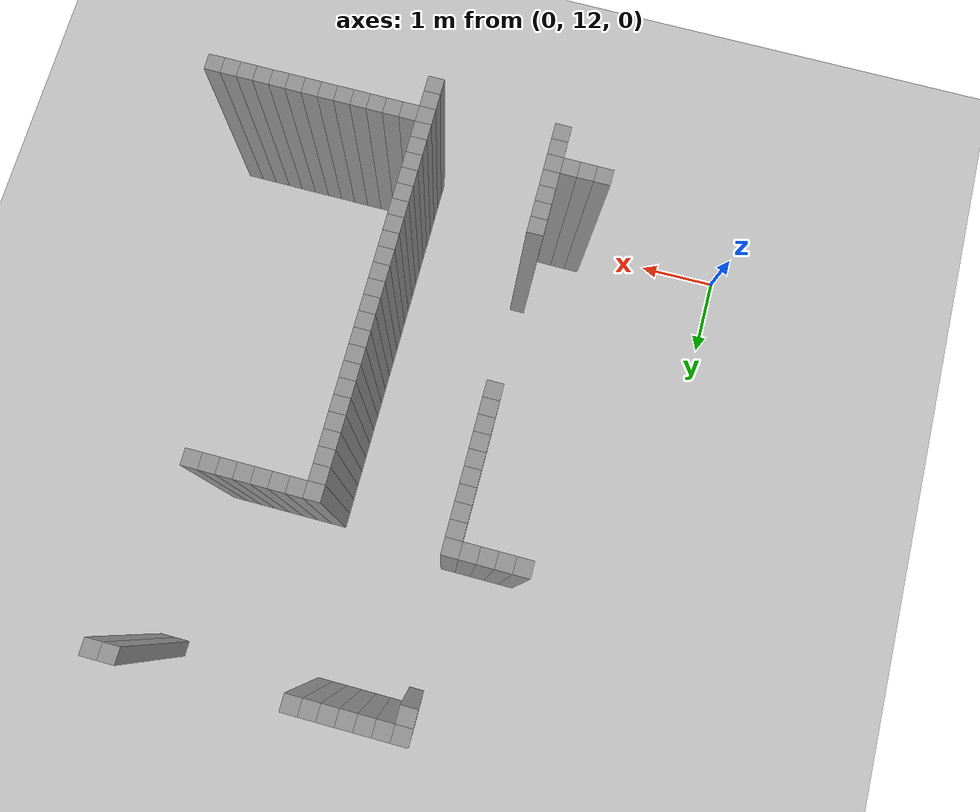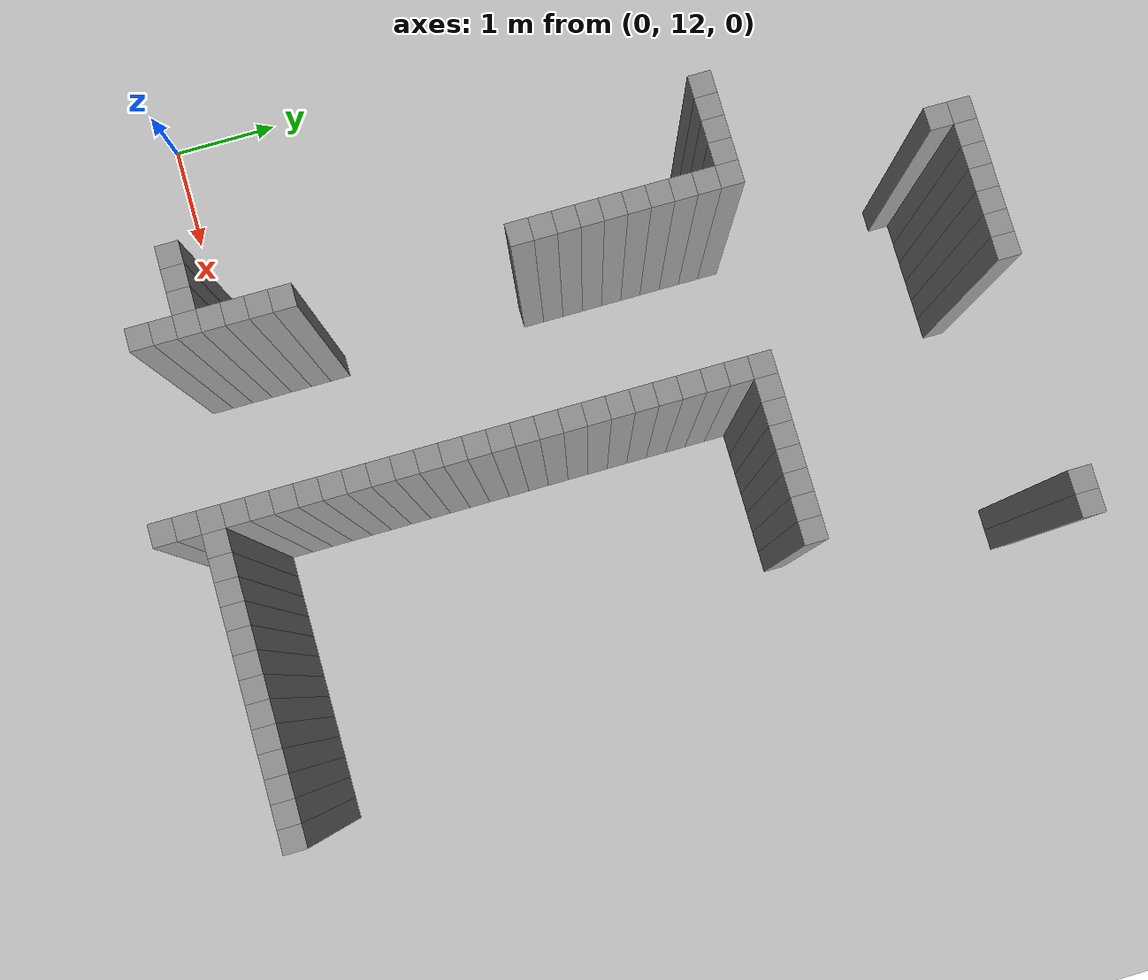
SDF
<sdf version="1.7">
 <world name="default">
  <model name="ground_plane">
   <static>1</static>
   <link name="link">
    <collision name="collision">
     <geometry><plane><normal>0 0 1</normal><size>100 100</size></plane></geometry>
     <surface>
      <contact><collide_bitmask>65535</collide_bitmask></contact>
      <friction><ode><mu>100</mu><mu2>50</mu2></ode></friction>
     </surface>
    </collision>
    <visual name="visual">
     <cast_shadows>0</cast_shadows>
     <geometry><plane><normal>0 0 1</normal><size>100 100</size></plane></geometry>
     <material>
      <script><uri>file://media/materials/scripts/gazebo.material</uri><name>Gazebo/Grey</name></script>
     </material>
    </visual>
   </link>
  </model>
  <model name="05222">
   <pose>-1 -1 0 0 -0 0</pose>
   <link name="Wall_581">
    <collision name="Wall_581_Collision">
     <geometry><box><size>0.2 0.2 3</size></box></geometry>
     <pose>0 0 1.5 0 -0 0</pose>
    </collision>
    <visual name="Wall_581_Visual">
     <pose>0 0 1.5 0 -0 0</pose>
     <geometry><box><size>0.2 0.2 3</size></box></geometry>
     <material>
      <script><uri>file://media/materials/scripts/gazebo.material</uri><name>Gazebo/Grey</name></script>
      <ambient>1 1 1 1</ambient>
     </material>
     <meta><layer>0</layer></meta>
    </visual>
    <pose>5.2 12.600000000000001 0 0 -0 0</pose>
   </link>
   <link name="Wall_586">
    <collision name="Wall_586_Collision">
     <geometry><box><size>0.2 0.2 3</size></box></geometry>
     <pose>0 0 1.5 0 -0 0</pose>
    </collision>
    <visual name="Wall_586_Visual">
     <pose>0 0 1.5 0 -0 0</pose>
     <geometry><box><size>0.2 0.2 3</size></box></geometry>
     <material>
      <script><uri>file://media/materials/scripts/gazebo.material</uri><name>Gazebo/Grey</name></script>
      <ambient>1 1 1 1</ambient>
     </material>
     <meta><layer>0</layer></meta>
    </visual>
    <pose>3.6 12.8 0 0 -0 0</pose>
   </link>
   <link name="Wall_587">
    <collision name="Wall_587_Collision">
     <geometry><box><size>0.2 0.2 3</size></box></geometry>
     <pose>0 0 1.5 0 -0 0</pose>
    </collision>
    <visual name="Wall_587_Visual">
     <pose>0 0 1.5 0 -0 0</pose>
     <geometry><box><size>0.2 0.2 3</size></box></geometry>
     <material>
      <script><uri>file://media/materials/scripts/gazebo.material</uri><name>Gazebo/Grey</name></script>
      <ambient>1 1 1 1</ambient>
     </material>
     <meta><layer>0</layer></meta>
    </visual>
    <pose>5.2 12.8 0 0 -0 0</pose>
   </link>
   <link name="Wall_592">
    <collision name="Wall_592_Collision">
     <geometry><box><size>0.2 0.2 3</size></box></geometry>
     <pose>0 0 1.5 0 -0 0</pose>
    </collision>
    <visual name="Wall_592_Visual">
     <pose>0 0 1.5 0 -0 0</pose>
     <geometry><box><size>0.2 0.2 3</size></box></geometry>
     <material>
      <script><uri>file://media/materials/scripts/gazebo.material</uri><name>Gazebo/Grey</name></script>
      <ambient>1 1 1 1</ambient>
     </material>
     <meta><layer>0</layer></meta>
    </visual>
    <pose>3.6 13.0 0 0 -0 0</pose>
   </link>
   <link name="Wall_593">
    <collision name="Wall_593_Collision">
     <geometry><box><size>0.2 0.2 3</size></box></geometry>
     <pose>0 0 1.5 0 -0 0</pose>
    </collision>
    <visual name="Wall_593_Visual">
     <pose>0 0 1.5 0 -0 0</pose>
     <geometry><box><size>0.2 0.2 3</size></box></geometry>
     <material>
      <script><uri>file://media/materials/scripts/gazebo.material</uri><name>Gazebo/Grey</name></script>
      <ambient>1 1 1 1</ambient>
     </material>
     <meta><layer>0</layer></meta>
    </visual>
    <pose>5.2 13.0 0 0 -0 0</pose>
   </link>
   <link name="Wall_594">
    <collision name="Wall_594_Collision">
     <geometry><box><size>0.2 0.2 3</size></box></geometry>
     <pose>0 0 1.5 0 -0 0</pose>
    </collision>
    <visual name="Wall_594_Visual">
     <pose>0 0 1.5 0 -0 0</pose>
     <geometry><box><size>0.2 0.2 3</size></box></geometry>
     <material>
      <script><uri>file://media/materials/scripts/gazebo.material</uri><name>Gazebo/Grey</name></script>
      <ambient>1 1 1 1</ambient>
     </material>
     <meta><layer>0</layer></meta>
    </visual>
    <pose>5.4 13.0 0 0 -0 0</pose>
   </link>
   <link name="Wall_595">
    <collision name="Wall_595_Collision">
     <geometry><box><size>0.2 0.2 3</size></box></geometry>
     <pose>0 0 1.5 0 -0 0</pose>
    </collision>
    <visual name="Wall_595_Visual">
     <pose>0 0 1.5 0 -0 0</pose>
     <geometry><box><size>0.2 0.2 3</size></box></geometry>
     <material>
      <script><uri>file://media/materials/scripts/gazebo.material</uri><name>Gazebo/Grey</name></script>
      <ambient>1 1 1 1</ambient>
     </material>
     <meta><layer>0</layer></meta>
    </visual>
    <pose>5.6000000000000005 13.0 0 0 -0 0</pose>
   </link>
   <link name="Wall_596">
    <collision name="Wall_596_Collision">
     <geometry><box><size>0.2 0.2 3</size></box></geometry>
     <pose>0 0 1.5 0 -0 0</pose>
    </collision>
    <visual name="Wall_596_Visual">
     <pose>0 0 1.5 0 -0 0</pose>
     <geometry><box><size>0.2 0.2 3</size></box></geometry>
     <material>
      <script><uri>file://media/materials/scripts/gazebo.material</uri><name>Gazebo/Grey</name></script>
      <ambient>1 1 1 1</ambient>
     </material>
     <meta><layer>0</layer></meta>
    </visual>
    <pose>5.800000000000001 13.0 0 0 -0 0</pose>
   </link>
   <link name="Wall_597">
    <collision name="Wall_597_Collision">
     <geometry><box><size>0.2 0.2 3</size></box></geometry>
     <pose>0 0 1.5 0 -0 0</pose>
    </collision>
    <visual name="Wall_597_Visual">
     <pose>0 0 1.5 0 -0 0</pose>
     <geometry><box><size>0.2 0.2 3</size></box></geometry>
     <material>
      <script><uri>file://media/materials/scripts/gazebo.material</uri><name>Gazebo/Grey</name></script>
      <ambient>1 1 1 1</ambient>
     </material>
     <meta><layer>0</layer></meta>
    </visual>
    <pose>6.0 13.0 0 0 -0 0</pose>
   </link>
   <link name="Wall_598">
    <collision name="Wall_598_Collision">
     <geometry><box><size>0.2 0.2 3</size></box></geometry>
     <pose>0 0 1.5 0 -0 0</pose>
    </collision>
    <visual name="Wall_598_Visual">
     <pose>0 0 1.5 0 -0 0</pose>
     <geometry><box><size>0.2 0.2 3</size></box></geometry>
     <material>
      <script><uri>file://media/materials/scripts/gazebo.material</uri><name>Gazebo/Grey</name></script>
      <ambient>1 1 1 1</ambient>
     </material>
     <meta><layer>0</layer></meta>
    </visual>
    <pose>6.2 13.0 0 0 -0 0</pose>
   </link>
   <link name="Wall_599">
    <collision name="Wall_599_Collision">
     <geometry><box><size>0.2 0.2 3</size></box></geometry>
     <pose>0 0 1.5 0 -0 0</pose>
    </collision>
    <visual name="Wall_599_Visual">
     <pose>0 0 1.5 0 -0 0</pose>
     <geometry><box><size>0.2 0.2 3</size></box></geometry>
     <material>
      <script><uri>file://media/materials/scripts/gazebo.material</uri><name>Gazebo/Grey</name></script>
      <ambient>1 1 1 1</ambient>
     </material>
     <meta><layer>0</layer></meta>
    </visual>
    <pose>6.4 13.0 0 0 -0 0</pose>
   </link>
   <link name="Wall_600">
    <collision name="Wall_600_Collision">
     <geometry><box><size>0.2 0.2 3</size></box></geometry>
     <pose>0 0 1.5 0 -0 0</pose>
    </collision>
    <visual name="Wall_600_Visual">
     <pose>0 0 1.5 0 -0 0</pose>
     <geometry><box><size>0.2 0.2 3</size></box></geometry>
     <material>
      <script><uri>file://media/materials/scripts/gazebo.material</uri><name>Gazebo/Grey</name></script>
      <ambient>1 1 1 1</ambient>
     </material>
     <meta><layer>0</layer></meta>
    </visual>
    <pose>6.6000000000000005 13.0 0 0 -0 0</pose>
   </link>
   <link name="Wall_601">
    <collision name="Wall_601_Collision">
     <geometry><box><size>0.2 0.2 3</size></box></geometry>
     <pose>0 0 1.5 0 -0 0</pose>
    </collision>
    <visual name="Wall_601_Visual">
     <pose>0 0 1.5 0 -0 0</pose>
     <geometry><box><size>0.2 0.2 3</size></box></geometry>
     <material>
      <script><uri>file://media/materials/scripts/gazebo.material</uri><name>Gazebo/Grey</name></script>
      <ambient>1 1 1 1</ambient>
     </material>
     <meta><layer>0</layer></meta>
    </visual>
    <pose>6.800000000000001 13.0 0 0 -0 0</pose>
   </link>
   <link name="Wall_602">
    <collision name="Wall_602_Collision">
     <geometry><box><size>0.2 0.2 3</size></box></geometry>
     <pose>0 0 1.5 0 -0 0</pose>
    </collision>
    <visual name="Wall_602_Visual">
     <pose>0 0 1.5 0 -0 0</pose>
     <geometry><box><size>0.2 0.2 3</size></box></geometry>
     <material>
      <script><uri>file://media/materials/scripts/gazebo.material</uri><name>Gazebo/Grey</name></script>
      <ambient>1 1 1 1</ambient>
     </material>
     <meta><layer>0</layer></meta>
    </visual>
    <pose>7.0 13.0 0 0 -0 0</pose>
   </link>
   <link name="Wall_603">
    <collision name="Wall_603_Collision">
     <geometry><box><size>0.2 0.2 3</size></box></geometry>
     <pose>0 0 1.5 0 -0 0</pose>
    </collision>
    <visual name="Wall_603_Visual">
     <pose>0 0 1.5 0 -0 0</pose>
     <geometry><box><size>0.2 0.2 3</size></box></geometry>
     <material>
      <script><uri>file://media/materials/scripts/gazebo.material</uri><name>Gazebo/Grey</name></script>
      <ambient>1 1 1 1</ambient>
     </material>
     <meta><layer>0</layer></meta>
    </visual>
    <pose>7.2 13.0 0 0 -0 0</pose>
   </link>
   <link name="Wall_604">
    <collision name="Wall_604_Collision">
     <geometry><box><size>0.2 0.2 3</size></box></geometry>
     <pose>0 0 1.5 0 -0 0</pose>
    </collision>
    <visual name="Wall_604_Visual">
     <pose>0 0 1.5 0 -0 0</pose>
     <geometry><box><size>0.2 0.2 3</size></box></geometry>
     <material>
      <script><uri>file://media/materials/scripts/gazebo.material</uri><name>Gazebo/Grey</name></script>
      <ambient>1 1 1 1</ambient>
     </material>
     <meta><layer>0</layer></meta>
    </visual>
    <pose>7.4 13.0 0 0 -0 0</pose>
   </link>
   <link name="Wall_605">
    <collision name="Wall_605_Collision">
     <geometry><box><size>0.2 0.2 3</size></box></geometry>
     <pose>0 0 1.5 0 -0 0</pose>
    </collision>
    <visual name="Wall_605_Visual">
     <pose>0 0 1.5 0 -0 0</pose>
     <geometry><box><size>0.2 0.2 3</size></box></geometry>
     <material>
      <script><uri>file://media/materials/scripts/gazebo.material</uri><name>Gazebo/Grey</name></script>
      <ambient>1 1 1 1</ambient>
     </material>
     <meta><layer>0</layer></meta>
    </visual>
    <pose>7.6000000000000005 13.0 0 0 -0 0</pose>
   </link>
   <link name="Wall_606">
    <collision name="Wall_606_Collision">
     <geometry><box><size>0.2 0.2 3</size></box></geometry>
     <pose>0 0 1.5 0 -0 0</pose>
    </collision>
    <visual name="Wall_606_Visual">
     <pose>0 0 1.5 0 -0 0</pose>
     <geometry><box><size>0.2 0.2 3</size></box></geometry>
     <material>
      <script><uri>file://media/materials/scripts/gazebo.material</uri><name>Gazebo/Grey</name></script>
      <ambient>1 1 1 1</ambient>
     </material>
     <meta><layer>0</layer></meta>
    </visual>
    <pose>7.800000000000001 13.0 0 0 -0 0</pose>
   </link>
   <link name="Wall_649">
    <collision name="Wall_649_Collision">
     <geometry><box><size>0.2 0.2 3</size></box></geometry>
     <pose>0 0 1.5 0 -0 0</pose>
    </collision>
    <visual name="Wall_649_Visual">
     <pose>0 0 1.5 0 -0 0</pose>
     <geometry><box><size>0.2 0.2 3</size></box></geometry>
     <material>
      <script><uri>file://media/materials/scripts/gazebo.material</uri><name>Gazebo/Grey</name></script>
      <ambient>1 1 1 1</ambient>
     </material>
     <meta><layer>0</layer></meta>
    </visual>
    <pose>3.0 13.200000000000001 0 0 -0 0</pose>
   </link>
   <link name="Wall_650">
    <collision name="Wall_650_Collision">
     <geometry><box><size>0.2 0.2 3</size></box></geometry>
     <pose>0 0 1.5 0 -0 0</pose>
    </collision>
    <visual name="Wall_650_Visual">
     <pose>0 0 1.5 0 -0 0</pose>
     <geometry><box><size>0.2 0.2 3</size></box></geometry>
     <material>
      <script><uri>file://media/materials/scripts/gazebo.material</uri><name>Gazebo/Grey</name></script>
      <ambient>1 1 1 1</ambient>
     </material>
     <meta><layer>0</layer></meta>
    </visual>
    <pose>3.2 13.200000000000001 0 0 -0 0</pose>
   </link>
   <link name="Wall_651">
    <collision name="Wall_651_Collision">
     <geometry><box><size>0.2 0.2 3</size></box></geometry>
     <pose>0 0 1.5 0 -0 0</pose>
    </collision>
    <visual name="Wall_651_Visual">
     <pose>0 0 1.5 0 -0 0</pose>
     <geometry><box><size>0.2 0.2 3</size></box></geometry>
     <material>
      <script><uri>file://media/materials/scripts/gazebo.material</uri><name>Gazebo/Grey</name></script>
      <ambient>1 1 1 1</ambient>
     </material>
     <meta><layer>0</layer></meta>
    </visual>
    <pose>3.4000000000000004 13.200000000000001 0 0 -0 0</pose>
   </link>
   <link name="Wall_652">
    <collision name="Wall_652_Collision">
     <geometry><box><size>0.2 0.2 3</size></box></geometry>
     <pose>0 0 1.5 0 -0 0</pose>
    </collision>
    <visual name="Wall_652_Visual">
     <pose>0 0 1.5 0 -0 0</pose>
     <geometry><box><size>0.2 0.2 3</size></box></geometry>
     <material>
      <script><uri>file://media/materials/scripts/gazebo.material</uri><name>Gazebo/Grey</name></script>
      <ambient>1 1 1 1</ambient>
     </material>
     <meta><layer>0</layer></meta>
    </visual>
    <pose>3.6 13.200000000000001 0 0 -0 0</pose>
   </link>
   <link name="Wall_653">
    <collision name="Wall_653_Collision">
     <geometry><box><size>0.2 0.2 3</size></box></geometry>
     <pose>0 0 1.5 0 -0 0</pose>
    </collision>
    <visual name="Wall_653_Visual">
     <pose>0 0 1.5 0 -0 0</pose>
     <geometry><box><size>0.2 0.2 3</size></box></geometry>
     <material>
      <script><uri>file://media/materials/scripts/gazebo.material</uri><name>Gazebo/Grey</name></script>
      <ambient>1 1 1 1</ambient>
     </material>
     <meta><layer>0</layer></meta>
    </visual>
    <pose>5.2 13.200000000000001 0 0 -0 0</pose>
   </link>
   <link name="Wall_660">
    <collision name="Wall_660_Collision">
     <geometry><box><size>0.2 0.2 3</size></box></geometry>
     <pose>0 0 1.5 0 -0 0</pose>
    </collision>
    <visual name="Wall_660_Visual">
     <pose>0 0 1.5 0 -0 0</pose>
     <geometry><box><size>0.2 0.2 3</size></box></geometry>
     <material>
      <script><uri>file://media/materials/scripts/gazebo.material</uri><name>Gazebo/Grey</name></script>
      <ambient>1 1 1 1</ambient>
     </material>
     <meta><layer>0</layer></meta>
    </visual>
    <pose>3.6 13.4 0 0 -0 0</pose>
   </link>
   <link name="Wall_661">
    <collision name="Wall_661_Collision">
     <geometry><box><size>0.2 0.2 3</size></box></geometry>
     <pose>0 0 1.5 0 -0 0</pose>
    </collision>
    <visual name="Wall_661_Visual">
     <pose>0 0 1.5 0 -0 0</pose>
     <geometry><box><size>0.2 0.2 3</size></box></geometry>
     <material>
      <script><uri>file://media/materials/scripts/gazebo.material</uri><name>Gazebo/Grey</name></script>
      <ambient>1 1 1 1</ambient>
     </material>
     <meta><layer>0</layer></meta>
    </visual>
    <pose>5.2 13.4 0 0 -0 0</pose>
   </link>
   <link name="Wall_668">
    <collision name="Wall_668_Collision">
     <geometry><box><size>0.2 0.2 3</size></box></geometry>
     <pose>0 0 1.5 0 -0 0</pose>
    </collision>
    <visual name="Wall_668_Visual">
     <pose>0 0 1.5 0 -0 0</pose>
     <geometry><box><size>0.2 0.2 3</size></box></geometry>
     <material>
      <script><uri>file://media/materials/scripts/gazebo.material</uri><name>Gazebo/Grey</name></script>
      <ambient>1 1 1 1</ambient>
     </material>
     <meta><layer>0</layer></meta>
    </visual>
    <pose>3.6 13.600000000000001 0 0 -0 0</pose>
   </link>
   <link name="Wall_669">
    <collision name="Wall_669_Collision">
     <geometry><box><size>0.2 0.2 3</size></box></geometry>
     <pose>0 0 1.5 0 -0 0</pose>
    </collision>
    <visual name="Wall_669_Visual">
     <pose>0 0 1.5 0 -0 0</pose>
     <geometry><box><size>0.2 0.2 3</size></box></geometry>
     <material>
      <script><uri>file://media/materials/scripts/gazebo.material</uri><name>Gazebo/Grey</name></script>
      <ambient>1 1 1 1</ambient>
     </material>
     <meta><layer>0</layer></meta>
    </visual>
    <pose>5.2 13.600000000000001 0 0 -0 0</pose>
   </link>
   <link name="Wall_676">
    <collision name="Wall_676_Collision">
     <geometry><box><size>0.2 0.2 3</size></box></geometry>
     <pose>0 0 1.5 0 -0 0</pose>
    </collision>
    <visual name="Wall_676_Visual">
     <pose>0 0 1.5 0 -0 0</pose>
     <geometry><box><size>0.2 0.2 3</size></box></geometry>
     <material>
      <script><uri>file://media/materials/scripts/gazebo.material</uri><name>Gazebo/Grey</name></script>
      <ambient>1 1 1 1</ambient>
     </material>
     <meta><layer>0</layer></meta>
    </visual>
    <pose>3.6 13.8 0 0 -0 0</pose>
   </link>
   <link name="Wall_677">
    <collision name="Wall_677_Collision">
     <geometry><box><size>0.2 0.2 3</size></box></geometry>
     <pose>0 0 1.5 0 -0 0</pose>
    </collision>
    <visual name="Wall_677_Visual">
     <pose>0 0 1.5 0 -0 0</pose>
     <geometry><box><size>0.2 0.2 3</size></box></geometry>
     <material>
      <script><uri>file://media/materials/scripts/gazebo.material</uri><name>Gazebo/Grey</name></script>
      <ambient>1 1 1 1</ambient>
     </material>
     <meta><layer>0</layer></meta>
    </visual>
    <pose>5.2 13.8 0 0 -0 0</pose>
   </link>
   <link name="Wall_683">
    <collision name="Wall_683_Collision">
     <geometry><box><size>0.2 0.2 3</size></box></geometry>
     <pose>0 0 1.5 0 -0 0</pose>
    </collision>
    <visual name="Wall_683_Visual">
     <pose>0 0 1.5 0 -0 0</pose>
     <geometry><box><size>0.2 0.2 3</size></box></geometry>
     <material>
      <script><uri>file://media/materials/scripts/gazebo.material</uri><name>Gazebo/Grey</name></script>
      <ambient>1 1 1 1</ambient>
     </material>
     <meta><layer>0</layer></meta>
    </visual>
    <pose>3.6 14.0 0 0 -0 0</pose>
   </link>
   <link name="Wall_684">
    <collision name="Wall_684_Collision">
     <geometry><box><size>0.2 0.2 3</size></box></geometry>
     <pose>0 0 1.5 0 -0 0</pose>
    </collision>
    <visual name="Wall_684_Visual">
     <pose>0 0 1.5 0 -0 0</pose>
     <geometry><box><size>0.2 0.2 3</size></box></geometry>
     <material>
      <script><uri>file://media/materials/scripts/gazebo.material</uri><name>Gazebo/Grey</name></script>
      <ambient>1 1 1 1</ambient>
     </material>
     <meta><layer>0</layer></meta>
    </visual>
    <pose>5.2 14.0 0 0 -0 0</pose>
   </link>
   <link name="Wall_690">
    <collision name="Wall_690_Collision">
     <geometry><box><size>0.2 0.2 3</size></box></geometry>
     <pose>0 0 1.5 0 -0 0</pose>
    </collision>
    <visual name="Wall_690_Visual">
     <pose>0 0 1.5 0 -0 0</pose>
     <geometry><box><size>0.2 0.2 3</size></box></geometry>
     <material>
      <script><uri>file://media/materials/scripts/gazebo.material</uri><name>Gazebo/Grey</name></script>
      <ambient>1 1 1 1</ambient>
     </material>
     <meta><layer>0</layer></meta>
    </visual>
    <pose>5.2 14.200000000000001 0 0 -0 0</pose>
   </link>
   <link name="Wall_696">
    <collision name="Wall_696_Collision">
     <geometry><box><size>0.2 0.2 3</size></box></geometry>
     <pose>0 0 1.5 0 -0 0</pose>
    </collision>
    <visual name="Wall_696_Visual">
     <pose>0 0 1.5 0 -0 0</pose>
     <geometry><box><size>0.2 0.2 3</size></box></geometry>
     <material>
      <script><uri>file://media/materials/scripts/gazebo.material</uri><name>Gazebo/Grey</name></script>
      <ambient>1 1 1 1</ambient>
     </material>
     <meta><layer>0</layer></meta>
    </visual>
    <pose>5.2 14.4 0 0 -0 0</pose>
   </link>
   <link name="Wall_702">
    <collision name="Wall_702_Collision">
     <geometry><box><size>0.2 0.2 3</size></box></geometry>
     <pose>0 0 1.5 0 -0 0</pose>
    </collision>
    <visual name="Wall_702_Visual">
     <pose>0 0 1.5 0 -0 0</pose>
     <geometry><box><size>0.2 0.2 3</size></box></geometry>
     <material>
      <script><uri>file://media/materials/scripts/gazebo.material</uri><name>Gazebo/Grey</name></script>
      <ambient>1 1 1 1</ambient>
     </material>
     <meta><layer>0</layer></meta>
    </visual>
    <pose>5.2 14.600000000000001 0 0 -0 0</pose>
   </link>
   <link name="Wall_709">
    <collision name="Wall_709_Collision">
     <geometry><box><size>0.2 0.2 3</size></box></geometry>
     <pose>0 0 1.5 0 -0 0</pose>
    </collision>
    <visual name="Wall_709_Visual">
     <pose>0 0 1.5 0 -0 0</pose>
     <geometry><box><size>0.2 0.2 3</size></box></geometry>
     <material>
      <script><uri>file://media/materials/scripts/gazebo.material</uri><name>Gazebo/Grey</name></script>
      <ambient>1 1 1 1</ambient>
     </material>
     <meta><layer>0</layer></meta>
    </visual>
    <pose>5.2 14.8 0 0 -0 0</pose>
   </link>
   <link name="Wall_715">
    <collision name="Wall_715_Collision">
     <geometry><box><size>0.2 0.2 3</size></box></geometry>
     <pose>0 0 1.5 0 -0 0</pose>
    </collision>
    <visual name="Wall_715_Visual">
     <pose>0 0 1.5 0 -0 0</pose>
     <geometry><box><size>0.2 0.2 3</size></box></geometry>
     <material>
      <script><uri>file://media/materials/scripts/gazebo.material</uri><name>Gazebo/Grey</name></script>
      <ambient>1 1 1 1</ambient>
     </material>
     <meta><layer>0</layer></meta>
    </visual>
    <pose>5.2 15.0 0 0 -0 0</pose>
   </link>
   <link name="Wall_721">
    <collision name="Wall_721_Collision">
     <geometry><box><size>0.2 0.2 3</size></box></geometry>
     <pose>0 0 1.5 0 -0 0</pose>
    </collision>
    <visual name="Wall_721_Visual">
     <pose>0 0 1.5 0 -0 0</pose>
     <geometry><box><size>0.2 0.2 3</size></box></geometry>
     <material>
      <script><uri>file://media/materials/scripts/gazebo.material</uri><name>Gazebo/Grey</name></script>
      <ambient>1 1 1 1</ambient>
     </material>
     <meta><layer>0</layer></meta>
    </visual>
    <pose>5.2 15.200000000000001 0 0 -0 0</pose>
   </link>
   <link name="Wall_726">
    <collision name="Wall_726_Collision">
     <geometry><box><size>0.2 0.2 3</size></box></geometry>
     <pose>0 0 1.5 0 -0 0</pose>
    </collision>
    <visual name="Wall_726_Visual">
     <pose>0 0 1.5 0 -0 0</pose>
     <geometry><box><size>0.2 0.2 3</size></box></geometry>
     <material>
      <script><uri>file://media/materials/scripts/gazebo.material</uri><name>Gazebo/Grey</name></script>
      <ambient>1 1 1 1</ambient>
     </material>
     <meta><layer>0</layer></meta>
    </visual>
    <pose>5.2 15.4 0 0 -0 0</pose>
   </link>
   <link name="Wall_731">
    <collision name="Wall_731_Collision">
     <geometry><box><size>0.2 0.2 3</size></box></geometry>
     <pose>0 0 1.5 0 -0 0</pose>
    </collision>
    <visual name="Wall_731_Visual">
     <pose>0 0 1.5 0 -0 0</pose>
     <geometry><box><size>0.2 0.2 3</size></box></geometry>
     <material>
      <script><uri>file://media/materials/scripts/gazebo.material</uri><name>Gazebo/Grey</name></script>
      <ambient>1 1 1 1</ambient>
     </material>
     <meta><layer>0</layer></meta>
    </visual>
    <pose>5.2 15.600000000000001 0 0 -0 0</pose>
   </link>
   <link name="Wall_736">
    <collision name="Wall_736_Collision">
     <geometry><box><size>0.2 0.2 3</size></box></geometry>
     <pose>0 0 1.5 0 -0 0</pose>
    </collision>
    <visual name="Wall_736_Visual">
     <pose>0 0 1.5 0 -0 0</pose>
     <geometry><box><size>0.2 0.2 3</size></box></geometry>
     <material>
      <script><uri>file://media/materials/scripts/gazebo.material</uri><name>Gazebo/Grey</name></script>
      <ambient>1 1 1 1</ambient>
     </material>
     <meta><layer>0</layer></meta>
    </visual>
    <pose>5.2 15.8 0 0 -0 0</pose>
   </link>
   <link name="Wall_760">
    <collision name="Wall_760_Collision">
     <geometry><box><size>0.2 0.2 3</size></box></geometry>
     <pose>0 0 1.5 0 -0 0</pose>
    </collision>
    <visual name="Wall_760_Visual">
     <pose>0 0 1.5 0 -0 0</pose>
     <geometry><box><size>0.2 0.2 3</size></box></geometry>
     <material>
      <script><uri>file://media/materials/scripts/gazebo.material</uri><name>Gazebo/Grey</name></script>
      <ambient>1 1 1 1</ambient>
     </material>
     <meta><layer>0</layer></meta>
    </visual>
    <pose>3.6 16.0 0 0 -0 0</pose>
   </link>
   <link name="Wall_761">
    <collision name="Wall_761_Collision">
     <geometry><box><size>0.2 0.2 3</size></box></geometry>
     <pose>0 0 1.5 0 -0 0</pose>
    </collision>
    <visual name="Wall_761_Visual">
     <pose>0 0 1.5 0 -0 0</pose>
     <geometry><box><size>0.2 0.2 3</size></box></geometry>
     <material>
      <script><uri>file://media/materials/scripts/gazebo.material</uri><name>Gazebo/Grey</name></script>
      <ambient>1 1 1 1</ambient>
     </material>
     <meta><layer>0</layer></meta>
    </visual>
    <pose>5.2 16.0 0 0 -0 0</pose>
   </link>
   <link name="Wall_767">
    <collision name="Wall_767_Collision">
     <geometry><box><size>0.2 0.2 3</size></box></geometry>
     <pose>0 0 1.5 0 -0 0</pose>
    </collision>
    <visual name="Wall_767_Visual">
     <pose>0 0 1.5 0 -0 0</pose>
     <geometry><box><size>0.2 0.2 3</size></box></geometry>
     <material>
      <script><uri>file://media/materials/scripts/gazebo.material</uri><name>Gazebo/Grey</name></script>
      <ambient>1 1 1 1</ambient>
     </material>
     <meta><layer>0</layer></meta>
    </visual>
    <pose>3.6 16.2 0 0 -0 0</pose>
   </link>
   <link name="Wall_768">
    <collision name="Wall_768_Collision">
     <geometry><box><size>0.2 0.2 3</size></box></geometry>
     <pose>0 0 1.5 0 -0 0</pose>
    </collision>
    <visual name="Wall_768_Visual">
     <pose>0 0 1.5 0 -0 0</pose>
     <geometry><box><size>0.2 0.2 3</size></box></geometry>
     <material>
      <script><uri>file://media/materials/scripts/gazebo.material</uri><name>Gazebo/Grey</name></script>
      <ambient>1 1 1 1</ambient>
     </material>
     <meta><layer>0</layer></meta>
    </visual>
    <pose>5.2 16.2 0 0 -0 0</pose>
   </link>
   <link name="Wall_773">
    <collision name="Wall_773_Collision">
     <geometry><box><size>0.2 0.2 3</size></box></geometry>
     <pose>0 0 1.5 0 -0 0</pose>
    </collision>
    <visual name="Wall_773_Visual">
     <pose>0 0 1.5 0 -0 0</pose>
     <geometry><box><size>0.2 0.2 3</size></box></geometry>
     <material>
      <script><uri>file://media/materials/scripts/gazebo.material</uri><name>Gazebo/Grey</name></script>
      <ambient>1 1 1 1</ambient>
     </material>
     <meta><layer>0</layer></meta>
    </visual>
    <pose>3.6 16.400000000000002 0 0 -0 0</pose>
   </link>
   <link name="Wall_774">
    <collision name="Wall_774_Collision">
     <geometry><box><size>0.2 0.2 3</size></box></geometry>
     <pose>0 0 1.5 0 -0 0</pose>
    </collision>
    <visual name="Wall_774_Visual">
     <pose>0 0 1.5 0 -0 0</pose>
     <geometry><box><size>0.2 0.2 3</size></box></geometry>
     <material>
      <script><uri>file://media/materials/scripts/gazebo.material</uri><name>Gazebo/Grey</name></script>
      <ambient>1 1 1 1</ambient>
     </material>
     <meta><layer>0</layer></meta>
    </visual>
    <pose>5.2 16.400000000000002 0 0 -0 0</pose>
   </link>
   <link name="Wall_779">
    <collision name="Wall_779_Collision">
     <geometry><box><size>0.2 0.2 3</size></box></geometry>
     <pose>0 0 1.5 0 -0 0</pose>
    </collision>
    <visual name="Wall_779_Visual">
     <pose>0 0 1.5 0 -0 0</pose>
     <geometry><box><size>0.2 0.2 3</size></box></geometry>
     <material>
      <script><uri>file://media/materials/scripts/gazebo.material</uri><name>Gazebo/Grey</name></script>
      <ambient>1 1 1 1</ambient>
     </material>
     <meta><layer>0</layer></meta>
    </visual>
    <pose>3.6 16.6 0 0 -0 0</pose>
   </link>
   <link name="Wall_780">
    <collision name="Wall_780_Collision">
     <geometry><box><size>0.2 0.2 3</size></box></geometry>
     <pose>0 0 1.5 0 -0 0</pose>
    </collision>
    <visual name="Wall_780_Visual">
     <pose>0 0 1.5 0 -0 0</pose>
     <geometry><box><size>0.2 0.2 3</size></box></geometry>
     <material>
      <script><uri>file://media/materials/scripts/gazebo.material</uri><name>Gazebo/Grey</name></script>
      <ambient>1 1 1 1</ambient>
     </material>
     <meta><layer>0</layer></meta>
    </visual>
    <pose>5.2 16.6 0 0 -0 0</pose>
   </link>
   <link name="Wall_786">
    <collision name="Wall_786_Collision">
     <geometry><box><size>0.2 0.2 3</size></box></geometry>
     <pose>0 0 1.5 0 -0 0</pose>
    </collision>
    <visual name="Wall_786_Visual">
     <pose>0 0 1.5 0 -0 0</pose>
     <geometry><box><size>0.2 0.2 3</size></box></geometry>
     <material>
      <script><uri>file://media/materials/scripts/gazebo.material</uri><name>Gazebo/Grey</name></script>
      <ambient>1 1 1 1</ambient>
     </material>
     <meta><layer>0</layer></meta>
    </visual>
    <pose>3.6 16.8 0 0 -0 0</pose>
   </link>
   <link name="Wall_787">
    <collision name="Wall_787_Collision">
     <geometry><box><size>0.2 0.2 3</size></box></geometry>
     <pose>0 0 1.5 0 -0 0</pose>
    </collision>
    <visual name="Wall_787_Visual">
     <pose>0 0 1.5 0 -0 0</pose>
     <geometry><box><size>0.2 0.2 3</size></box></geometry>
     <material>
      <script><uri>file://media/materials/scripts/gazebo.material</uri><name>Gazebo/Grey</name></script>
      <ambient>1 1 1 1</ambient>
     </material>
     <meta><layer>0</layer></meta>
    </visual>
    <pose>5.2 16.8 0 0 -0 0</pose>
   </link>
   <link name="Wall_793">
    <collision name="Wall_793_Collision">
     <geometry><box><size>0.2 0.2 3</size></box></geometry>
     <pose>0 0 1.5 0 -0 0</pose>
    </collision>
    <visual name="Wall_793_Visual">
     <pose>0 0 1.5 0 -0 0</pose>
     <geometry><box><size>0.2 0.2 3</size></box></geometry>
     <material>
      <script><uri>file://media/materials/scripts/gazebo.material</uri><name>Gazebo/Grey</name></script>
      <ambient>1 1 1 1</ambient>
     </material>
     <meta><layer>0</layer></meta>
    </visual>
    <pose>3.6 17.0 0 0 -0 0</pose>
   </link>
   <link name="Wall_794">
    <collision name="Wall_794_Collision">
     <geometry><box><size>0.2 0.2 3</size></box></geometry>
     <pose>0 0 1.5 0 -0 0</pose>
    </collision>
    <visual name="Wall_794_Visual">
     <pose>0 0 1.5 0 -0 0</pose>
     <geometry><box><size>0.2 0.2 3</size></box></geometry>
     <material>
      <script><uri>file://media/materials/scripts/gazebo.material</uri><name>Gazebo/Grey</name></script>
      <ambient>1 1 1 1</ambient>
     </material>
     <meta><layer>0</layer></meta>
    </visual>
    <pose>5.2 17.0 0 0 -0 0</pose>
   </link>
   <link name="Wall_801">
    <collision name="Wall_801_Collision">
     <geometry><box><size>0.2 0.2 3</size></box></geometry>
     <pose>0 0 1.5 0 -0 0</pose>
    </collision>
    <visual name="Wall_801_Visual">
     <pose>0 0 1.5 0 -0 0</pose>
     <geometry><box><size>0.2 0.2 3</size></box></geometry>
     <material>
      <script><uri>file://media/materials/scripts/gazebo.material</uri><name>Gazebo/Grey</name></script>
      <ambient>1 1 1 1</ambient>
     </material>
     <meta><layer>0</layer></meta>
    </visual>
    <pose>3.6 17.2 0 0 -0 0</pose>
   </link>
   <link name="Wall_802">
    <collision name="Wall_802_Collision">
     <geometry><box><size>0.2 0.2 3</size></box></geometry>
     <pose>0 0 1.5 0 -0 0</pose>
    </collision>
    <visual name="Wall_802_Visual">
     <pose>0 0 1.5 0 -0 0</pose>
     <geometry><box><size>0.2 0.2 3</size></box></geometry>
     <material>
      <script><uri>file://media/materials/scripts/gazebo.material</uri><name>Gazebo/Grey</name></script>
      <ambient>1 1 1 1</ambient>
     </material>
     <meta><layer>0</layer></meta>
    </visual>
    <pose>5.2 17.2 0 0 -0 0</pose>
   </link>
   <link name="Wall_808">
    <collision name="Wall_808_Collision">
     <geometry><box><size>0.2 0.2 3</size></box></geometry>
     <pose>0 0 1.5 0 -0 0</pose>
    </collision>
    <visual name="Wall_808_Visual">
     <pose>0 0 1.5 0 -0 0</pose>
     <geometry><box><size>0.2 0.2 3</size></box></geometry>
     <material>
      <script><uri>file://media/materials/scripts/gazebo.material</uri><name>Gazebo/Grey</name></script>
      <ambient>1 1 1 1</ambient>
     </material>
     <meta><layer>0</layer></meta>
    </visual>
    <pose>3.6 17.400000000000002 0 0 -0 0</pose>
   </link>
   <link name="Wall_809">
    <collision name="Wall_809_Collision">
     <geometry><box><size>0.2 0.2 3</size></box></geometry>
     <pose>0 0 1.5 0 -0 0</pose>
    </collision>
    <visual name="Wall_809_Visual">
     <pose>0 0 1.5 0 -0 0</pose>
     <geometry><box><size>0.2 0.2 3</size></box></geometry>
     <material>
      <script><uri>file://media/materials/scripts/gazebo.material</uri><name>Gazebo/Grey</name></script>
      <ambient>1 1 1 1</ambient>
     </material>
     <meta><layer>0</layer></meta>
    </visual>
    <pose>5.2 17.400000000000002 0 0 -0 0</pose>
   </link>
   <link name="Wall_815">
    <collision name="Wall_815_Collision">
     <geometry><box><size>0.2 0.2 3</size></box></geometry>
     <pose>0 0 1.5 0 -0 0</pose>
    </collision>
    <visual name="Wall_815_Visual">
     <pose>0 0 1.5 0 -0 0</pose>
     <geometry><box><size>0.2 0.2 3</size></box></geometry>
     <material>
      <script><uri>file://media/materials/scripts/gazebo.material</uri><name>Gazebo/Grey</name></script>
      <ambient>1 1 1 1</ambient>
     </material>
     <meta><layer>0</layer></meta>
    </visual>
    <pose>3.6 17.6 0 0 -0 0</pose>
   </link>
   <link name="Wall_816">
    <collision name="Wall_816_Collision">
     <geometry><box><size>0.2 0.2 3</size></box></geometry>
     <pose>0 0 1.5 0 -0 0</pose>
    </collision>
    <visual name="Wall_816_Visual">
     <pose>0 0 1.5 0 -0 0</pose>
     <geometry><box><size>0.2 0.2 3</size></box></geometry>
     <material>
      <script><uri>file://media/materials/scripts/gazebo.material</uri><name>Gazebo/Grey</name></script>
      <ambient>1 1 1 1</ambient>
     </material>
     <meta><layer>0</layer></meta>
    </visual>
    <pose>5.2 17.6 0 0 -0 0</pose>
   </link>
   <link name="Wall_817">
    <collision name="Wall_817_Collision">
     <geometry><box><size>0.2 0.2 3</size></box></geometry>
     <pose>0 0 1.5 0 -0 0</pose>
    </collision>
    <visual name="Wall_817_Visual">
     <pose>0 0 1.5 0 -0 0</pose>
     <geometry><box><size>0.2 0.2 3</size></box></geometry>
     <material>
      <script><uri>file://media/materials/scripts/gazebo.material</uri><name>Gazebo/Grey</name></script>
      <ambient>1 1 1 1</ambient>
     </material>
     <meta><layer>0</layer></meta>
    </visual>
    <pose>5.4 17.6 0 0 -0 0</pose>
   </link>
   <link name="Wall_818">
    <collision name="Wall_818_Collision">
     <geometry><box><size>0.2 0.2 3</size></box></geometry>
     <pose>0 0 1.5 0 -0 0</pose>
    </collision>
    <visual name="Wall_818_Visual">
     <pose>0 0 1.5 0 -0 0</pose>
     <geometry><box><size>0.2 0.2 3</size></box></geometry>
     <material>
      <script><uri>file://media/materials/scripts/gazebo.material</uri><name>Gazebo/Grey</name></script>
      <ambient>1 1 1 1</ambient>
     </material>
     <meta><layer>0</layer></meta>
    </visual>
    <pose>5.6000000000000005 17.6 0 0 -0 0</pose>
   </link>
   <link name="Wall_819">
    <collision name="Wall_819_Collision">
     <geometry><box><size>0.2 0.2 3</size></box></geometry>
     <pose>0 0 1.5 0 -0 0</pose>
    </collision>
    <visual name="Wall_819_Visual">
     <pose>0 0 1.5 0 -0 0</pose>
     <geometry><box><size>0.2 0.2 3</size></box></geometry>
     <material>
      <script><uri>file://media/materials/scripts/gazebo.material</uri><name>Gazebo/Grey</name></script>
      <ambient>1 1 1 1</ambient>
     </material>
     <meta><layer>0</layer></meta>
    </visual>
    <pose>5.800000000000001 17.6 0 0 -0 0</pose>
   </link>
   <link name="Wall_820">
    <collision name="Wall_820_Collision">
     <geometry><box><size>0.2 0.2 3</size></box></geometry>
     <pose>0 0 1.5 0 -0 0</pose>
    </collision>
    <visual name="Wall_820_Visual">
     <pose>0 0 1.5 0 -0 0</pose>
     <geometry><box><size>0.2 0.2 3</size></box></geometry>
     <material>
      <script><uri>file://media/materials/scripts/gazebo.material</uri><name>Gazebo/Grey</name></script>
      <ambient>1 1 1 1</ambient>
     </material>
     <meta><layer>0</layer></meta>
    </visual>
    <pose>6.0 17.6 0 0 -0 0</pose>
   </link>
   <link name="Wall_821">
    <collision name="Wall_821_Collision">
     <geometry><box><size>0.2 0.2 3</size></box></geometry>
     <pose>0 0 1.5 0 -0 0</pose>
    </collision>
    <visual name="Wall_821_Visual">
     <pose>0 0 1.5 0 -0 0</pose>
     <geometry><box><size>0.2 0.2 3</size></box></geometry>
     <material>
      <script><uri>file://media/materials/scripts/gazebo.material</uri><name>Gazebo/Grey</name></script>
      <ambient>1 1 1 1</ambient>
     </material>
     <meta><layer>0</layer></meta>
    </visual>
    <pose>6.2 17.6 0 0 -0 0</pose>
   </link>
   <link name="Wall_822">
    <collision name="Wall_822_Collision">
     <geometry><box><size>0.2 0.2 3</size></box></geometry>
     <pose>0 0 1.5 0 -0 0</pose>
    </collision>
    <visual name="Wall_822_Visual">
     <pose>0 0 1.5 0 -0 0</pose>
     <geometry><box><size>0.2 0.2 3</size></box></geometry>
     <material>
      <script><uri>file://media/materials/scripts/gazebo.material</uri><name>Gazebo/Grey</name></script>
      <ambient>1 1 1 1</ambient>
     </material>
     <meta><layer>0</layer></meta>
    </visual>
    <pose>6.4 17.6 0 0 -0 0</pose>
   </link>
   <link name="Wall_823">
    <collision name="Wall_823_Collision">
     <geometry><box><size>0.2 0.2 3</size></box></geometry>
     <pose>0 0 1.5 0 -0 0</pose>
    </collision>
    <visual name="Wall_823_Visual">
     <pose>0 0 1.5 0 -0 0</pose>
     <geometry><box><size>0.2 0.2 3</size></box></geometry>
     <material>
      <script><uri>file://media/materials/scripts/gazebo.material</uri><name>Gazebo/Grey</name></script>
      <ambient>1 1 1 1</ambient>
     </material>
     <meta><layer>0</layer></meta>
    </visual>
    <pose>6.6000000000000005 17.6 0 0 -0 0</pose>
   </link>
   <link name="Wall_862">
    <collision name="Wall_862_Collision">
     <geometry><box><size>0.2 0.2 3</size></box></geometry>
     <pose>0 0 1.5 0 -0 0</pose>
    </collision>
    <visual name="Wall_862_Visual">
     <pose>0 0 1.5 0 -0 0</pose>
     <geometry><box><size>0.2 0.2 3</size></box></geometry>
     <material>
      <script><uri>file://media/materials/scripts/gazebo.material</uri><name>Gazebo/Grey</name></script>
      <ambient>1 1 1 1</ambient>
     </material>
     <meta><layer>0</layer></meta>
    </visual>
    <pose>2.8000000000000003 17.8 0 0 -0 0</pose>
   </link>
   <link name="Wall_863">
    <collision name="Wall_863_Collision">
     <geometry><box><size>0.2 0.2 3</size></box></geometry>
     <pose>0 0 1.5 0 -0 0</pose>
    </collision>
    <visual name="Wall_863_Visual">
     <pose>0 0 1.5 0 -0 0</pose>
     <geometry><box><size>0.2 0.2 3</size></box></geometry>
     <material>
      <script><uri>file://media/materials/scripts/gazebo.material</uri><name>Gazebo/Grey</name></script>
      <ambient>1 1 1 1</ambient>
     </material>
     <meta><layer>0</layer></meta>
    </visual>
    <pose>3.0 17.8 0 0 -0 0</pose>
   </link>
   <link name="Wall_864">
    <collision name="Wall_864_Collision">
     <geometry><box><size>0.2 0.2 3</size></box></geometry>
     <pose>0 0 1.5 0 -0 0</pose>
    </collision>
    <visual name="Wall_864_Visual">
     <pose>0 0 1.5 0 -0 0</pose>
     <geometry><box><size>0.2 0.2 3</size></box></geometry>
     <material>
      <script><uri>file://media/materials/scripts/gazebo.material</uri><name>Gazebo/Grey</name></script>
      <ambient>1 1 1 1</ambient>
     </material>
     <meta><layer>0</layer></meta>
    </visual>
    <pose>3.2 17.8 0 0 -0 0</pose>
   </link>
   <link name="Wall_865">
    <collision name="Wall_865_Collision">
     <geometry><box><size>0.2 0.2 3</size></box></geometry>
     <pose>0 0 1.5 0 -0 0</pose>
    </collision>
    <visual name="Wall_865_Visual">
     <pose>0 0 1.5 0 -0 0</pose>
     <geometry><box><size>0.2 0.2 3</size></box></geometry>
     <material>
      <script><uri>file://media/materials/scripts/gazebo.material</uri><name>Gazebo/Grey</name></script>
      <ambient>1 1 1 1</ambient>
     </material>
     <meta><layer>0</layer></meta>
    </visual>
    <pose>3.4000000000000004 17.8 0 0 -0 0</pose>
   </link>
   <link name="Wall_866">
    <collision name="Wall_866_Collision">
     <geometry><box><size>0.2 0.2 3</size></box></geometry>
     <pose>0 0 1.5 0 -0 0</pose>
    </collision>
    <visual name="Wall_866_Visual">
     <pose>0 0 1.5 0 -0 0</pose>
     <geometry><box><size>0.2 0.2 3</size></box></geometry>
     <material>
      <script><uri>file://media/materials/scripts/gazebo.material</uri><name>Gazebo/Grey</name></script>
      <ambient>1 1 1 1</ambient>
     </material>
     <meta><layer>0</layer></meta>
    </visual>
    <pose>3.6 17.8 0 0 -0 0</pose>
   </link>
   <link name="Wall_895">
    <collision name="Wall_895_Collision">
     <geometry><box><size>0.2 0.2 3</size></box></geometry>
     <pose>0 0 1.5 0 -0 0</pose>
    </collision>
    <visual name="Wall_895_Visual">
     <pose>0 0 1.5 0 -0 0</pose>
     <geometry><box><size>0.2 0.2 3</size></box></geometry>
     <material>
      <script><uri>file://media/materials/scripts/gazebo.material</uri><name>Gazebo/Grey</name></script>
      <ambient>1 1 1 1</ambient>
     </material>
     <meta><layer>0</layer></meta>
    </visual>
    <pose>3.6 19.6 0 0 -0 0</pose>
   </link>
   <link name="Wall_899">
    <collision name="Wall_899_Collision">
     <geometry><box><size>0.2 0.2 3</size></box></geometry>
     <pose>0 0 1.5 0 -0 0</pose>
    </collision>
    <visual name="Wall_899_Visual">
     <pose>0 0 1.5 0 -0 0</pose>
     <geometry><box><size>0.2 0.2 3</size></box></geometry>
     <material>
      <script><uri>file://media/materials/scripts/gazebo.material</uri><name>Gazebo/Grey</name></script>
      <ambient>1 1 1 1</ambient>
     </material>
     <meta><layer>0</layer></meta>
    </visual>
    <pose>3.6 19.8 0 0 -0 0</pose>
   </link>
   <link name="Wall_900">
    <collision name="Wall_900_Collision">
     <geometry><box><size>0.2 0.2 3</size></box></geometry>
     <pose>0 0 1.5 0 -0 0</pose>
    </collision>
    <visual name="Wall_900_Visual">
     <pose>0 0 1.5 0 -0 0</pose>
     <geometry><box><size>0.2 0.2 3</size></box></geometry>
     <material>
      <script><uri>file://media/materials/scripts/gazebo.material</uri><name>Gazebo/Grey</name></script>
      <ambient>1 1 1 1</ambient>
     </material>
     <meta><layer>0</layer></meta>
    </visual>
    <pose>3.8000000000000003 19.8 0 0 -0 0</pose>
   </link>
   <link name="Wall_901">
    <collision name="Wall_901_Collision">
     <geometry><box><size>0.2 0.2 3</size></box></geometry>
     <pose>0 0 1.5 0 -0 0</pose>
    </collision>
    <visual name="Wall_901_Visual">
     <pose>0 0 1.5 0 -0 0</pose>
     <geometry><box><size>0.2 0.2 3</size></box></geometry>
     <material>
      <script><uri>file://media/materials/scripts/gazebo.material</uri><name>Gazebo/Grey</name></script>
      <ambient>1 1 1 1</ambient>
     </material>
     <meta><layer>0</layer></meta>
    </visual>
    <pose>4.0 19.8 0 0 -0 0</pose>
   </link>
   <link name="Wall_902">
    <collision name="Wall_902_Collision">
     <geometry><box><size>0.2 0.2 3</size></box></geometry>
     <pose>0 0 1.5 0 -0 0</pose>
    </collision>
    <visual name="Wall_902_Visual">
     <pose>0 0 1.5 0 -0 0</pose>
     <geometry><box><size>0.2 0.2 3</size></box></geometry>
     <material>
      <script><uri>file://media/materials/scripts/gazebo.material</uri><name>Gazebo/Grey</name></script>
      <ambient>1 1 1 1</ambient>
     </material>
     <meta><layer>0</layer></meta>
    </visual>
    <pose>4.2 19.8 0 0 -0 0</pose>
   </link>
   <link name="Wall_903">
    <collision name="Wall_903_Collision">
     <geometry><box><size>0.2 0.2 3</size></box></geometry>
     <pose>0 0 1.5 0 -0 0</pose>
    </collision>
    <visual name="Wall_903_Visual">
     <pose>0 0 1.5 0 -0 0</pose>
     <geometry><box><size>0.2 0.2 3</size></box></geometry>
     <material>
      <script><uri>file://media/materials/scripts/gazebo.material</uri><name>Gazebo/Grey</name></script>
      <ambient>1 1 1 1</ambient>
     </material>
     <meta><layer>0</layer></meta>
    </visual>
    <pose>4.4 19.8 0 0 -0 0</pose>
   </link>
   <link name="Wall_904">
    <collision name="Wall_904_Collision">
     <geometry><box><size>0.2 0.2 3</size></box></geometry>
     <pose>0 0 1.5 0 -0 0</pose>
    </collision>
    <visual name="Wall_904_Visual">
     <pose>0 0 1.5 0 -0 0</pose>
     <geometry><box><size>0.2 0.2 3</size></box></geometry>
     <material>
      <script><uri>file://media/materials/scripts/gazebo.material</uri><name>Gazebo/Grey</name></script>
      <ambient>1 1 1 1</ambient>
     </material>
     <meta><layer>0</layer></meta>
    </visual>
    <pose>4.6000000000000005 19.8 0 0 -0 0</pose>
   </link>
   <link name="Wall_905">
    <collision name="Wall_905_Collision">
     <geometry><box><size>0.2 0.2 3</size></box></geometry>
     <pose>0 0 1.5 0 -0 0</pose>
    </collision>
    <visual name="Wall_905_Visual">
     <pose>0 0 1.5 0 -0 0</pose>
     <geometry><box><size>0.2 0.2 3</size></box></geometry>
     <material>
      <script><uri>file://media/materials/scripts/gazebo.material</uri><name>Gazebo/Grey</name></script>
      <ambient>1 1 1 1</ambient>
     </material>
     <meta><layer>0</layer></meta>
    </visual>
    <pose>4.800000000000001 19.8 0 0 -0 0</pose>
   </link>
   <link name="Wall_906">
    <collision name="Wall_906_Collision">
     <geometry><box><size>0.2 0.2 3</size></box></geometry>
     <pose>0 0 1.5 0 -0 0</pose>
    </collision>
    <visual name="Wall_906_Visual">
     <pose>0 0 1.5 0 -0 0</pose>
     <geometry><box><size>0.2 0.2 3</size></box></geometry>
     <material>
      <script><uri>file://media/materials/scripts/gazebo.material</uri><name>Gazebo/Grey</name></script>
      <ambient>1 1 1 1</ambient>
     </material>
     <meta><layer>0</layer></meta>
    </visual>
    <pose>6.800000000000001 19.8 0 0 -0 0</pose>
   </link>
   <link name="Wall_907">
    <collision name="Wall_907_Collision">
     <geometry><box><size>0.2 0.2 3</size></box></geometry>
     <pose>0 0 1.5 0 -0 0</pose>
    </collision>
    <visual name="Wall_907_Visual">
     <pose>0 0 1.5 0 -0 0</pose>
     <geometry><box><size>0.2 0.2 3</size></box></geometry>
     <material>
      <script><uri>file://media/materials/scripts/gazebo.material</uri><name>Gazebo/Grey</name></script>
      <ambient>1 1 1 1</ambient>
     </material>
     <meta><layer>0</layer></meta>
    </visual>
    <pose>7.0 19.8 0 0 -0 0</pose>
   </link>
   <static>1</static>
  </model>
 </world>
</sdf>
